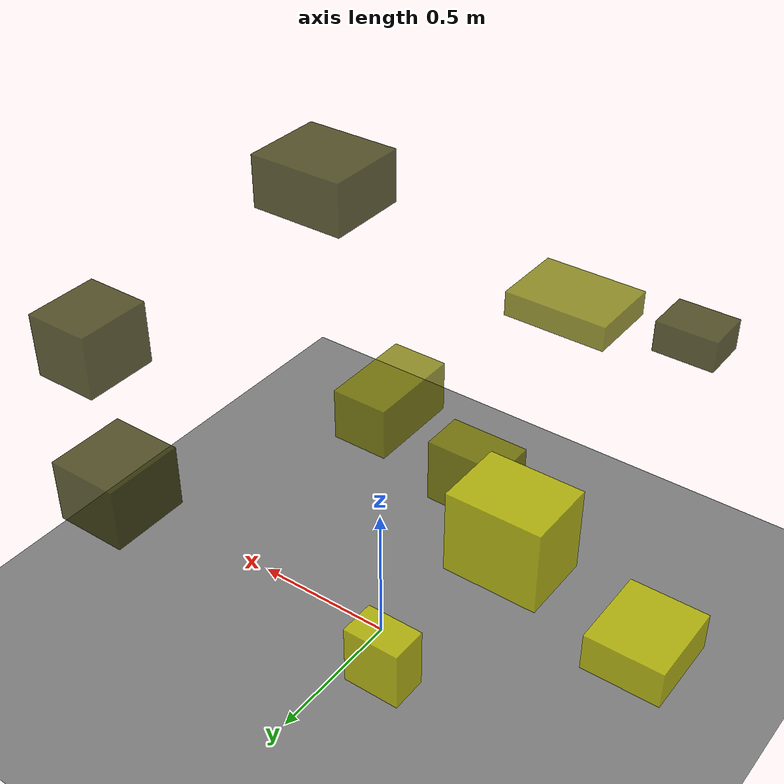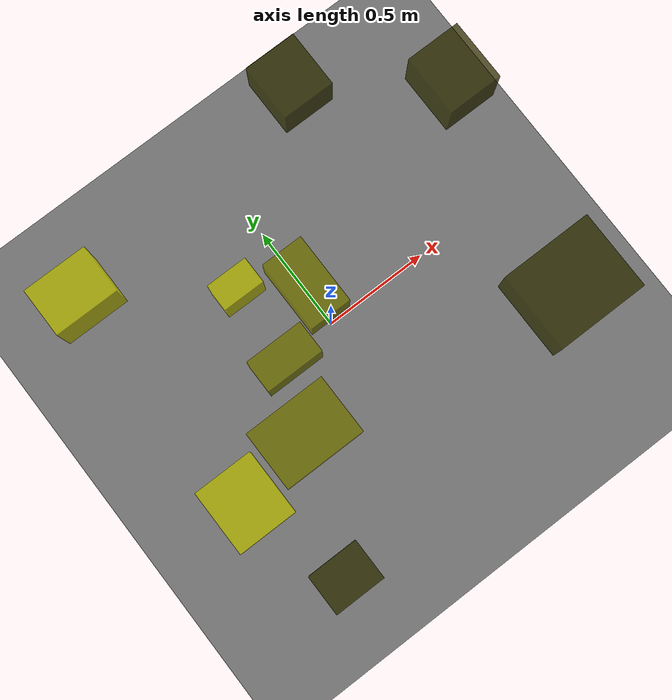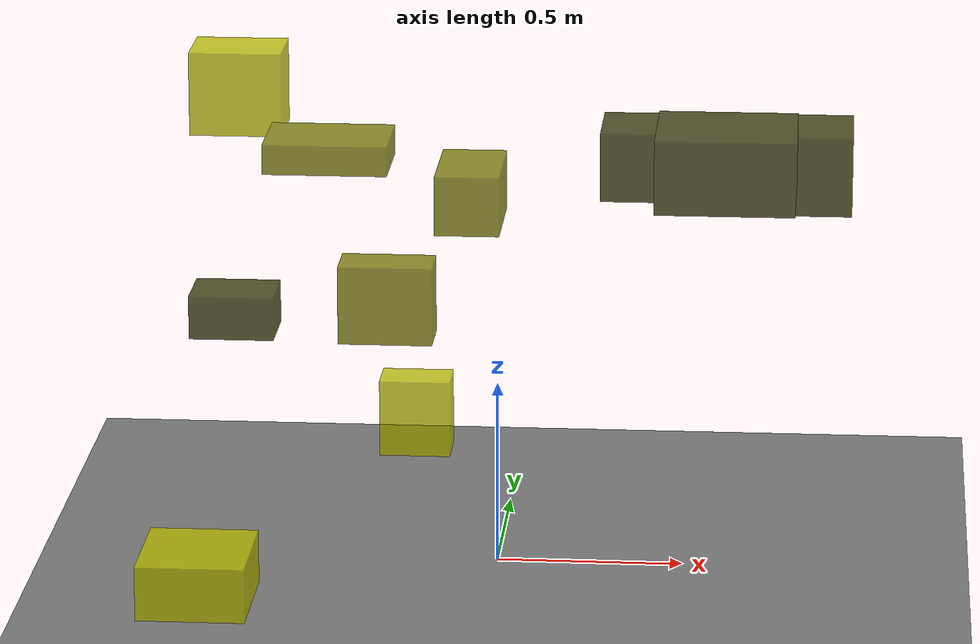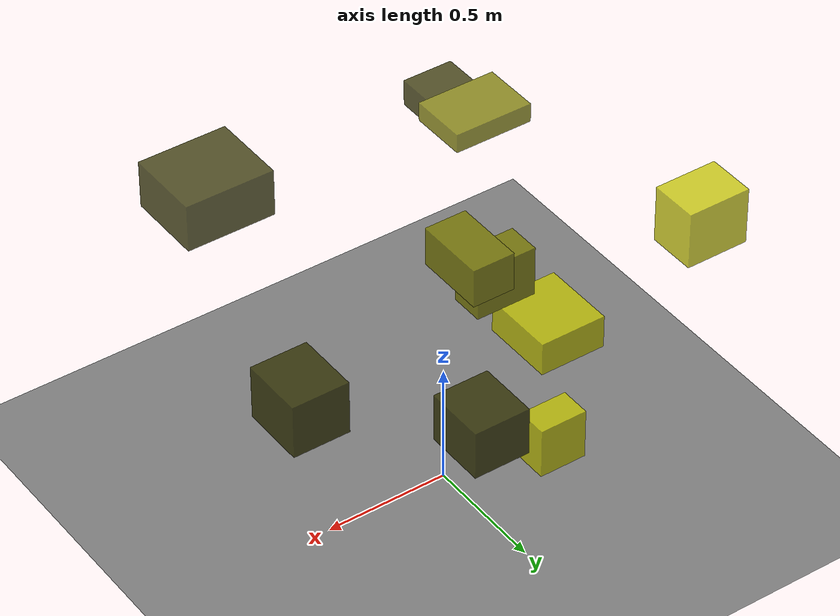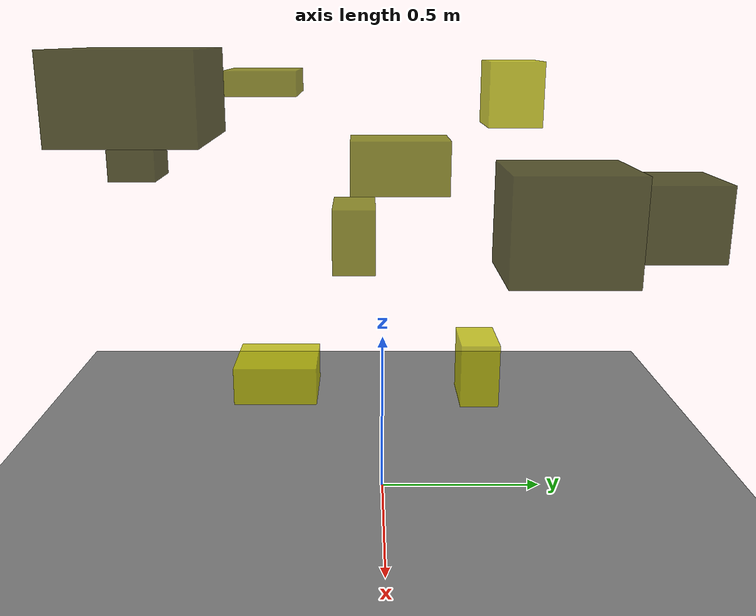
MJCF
<?xml version="1.0"?>
<mujoco model="obstacle_scene">
  <compiler angle="radian" coordinate="local"/>
  <option timestep="0.001" gravity="0 0 -9.81"/>

  <asset>
    <material name="obstacle_mat" rgba="0.8 0.8 0.0 0.8"/>
    <material name="ground_mat" rgba="0.5 0.5 0.5 1"/>
  </asset>

  <worldbody>
    <!-- Ground plane -->
    <geom name="ground" type="plane" size="3 3 0.1" material="ground_mat"/>

    <!-- Obstacles -->
    <body name="obstacle_0" pos="0.825452 0.342083 1.028373">
      <geom name="obs_0" type="box" size="0.111906 0.126421 0.108194" rgba="0.2 0.2 0.0 0.8"/>
    </body>
    <body name="obstacle_1" pos="-0.405843 -0.383719 1.240759">
      <geom name="obs_1" type="box" size="0.159618 0.116600 0.038616" rgba="0.5 0.5 0.0 0.8"/>
    </body>
    <body name="obstacle_2" pos="-0.746380 0.482883 1.183272">
      <geom name="obs_2" type="box" size="0.126056 0.096275 0.115111" rgba="0.8 0.8 0.0 0.8"/>
    </body>
    <body name="obstacle_3" pos="-0.593249 -0.862013 0.951069">
      <geom name="obs_3" type="box" size="0.105265 0.082175 0.054640" rgba="0.2 0.2 0.0 0.8"/>
    </body>
    <body name="obstacle_4" pos="-0.287139 -0.089182 0.753860">
      <geom name="obs_4" type="box" size="0.124826 0.069019 0.105218" rgba="0.5 0.5 0.0 0.8"/>
    </body>
    <body name="obstacle_5" pos="-0.765013 -0.400562 0.078102">
      <geom name="obs_5" type="box" size="0.144007 0.159752 0.073383" rgba="0.8 0.8 0.0 0.8"/>
    </body>
    <body name="obstacle_6" pos="0.350301 0.711146 0.943287">
      <geom name="obs_6" type="box" size="0.109706 0.119814 0.097102" rgba="0.2 0.2 0.0 0.8"/>
    </body>
    <body name="obstacle_7" pos="-0.074675 0.048403 1.014003">
      <geom name="obs_7" type="box" size="0.085750 0.145476 0.079728" rgba="0.5 0.5 0.0 0.8"/>
    </body>
    <body name="obstacle_8" pos="-0.247722 0.323362 0.308569">
      <geom name="obs_8" type="box" size="0.096712 0.062723 0.105752" rgba="0.8 0.8 0.0 0.8"/>
    </body>
    <body name="obstacle_9" pos="0.619668 -0.537720 1.263203">
      <geom name="obs_9" type="box" size="0.176809 0.153857 0.095278" rgba="0.2 0.2 0.0 0.8"/>
    </body>
  </worldbody>
</mujoco>
